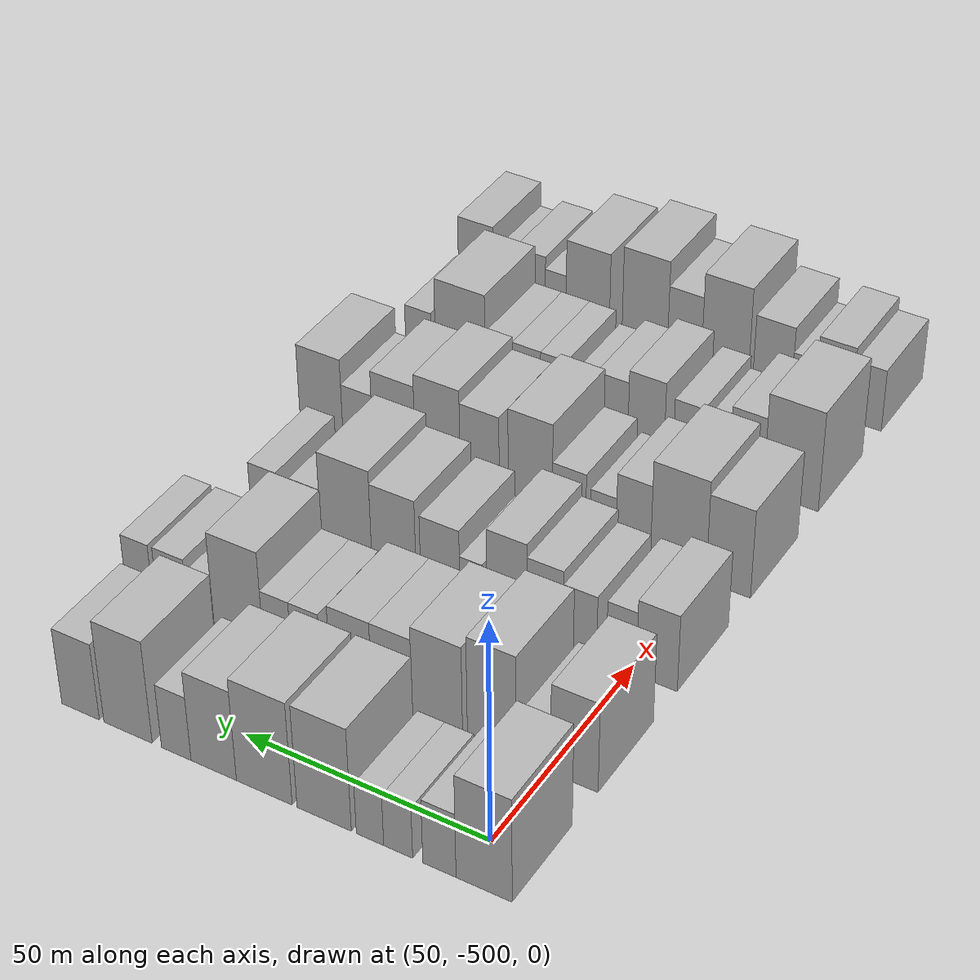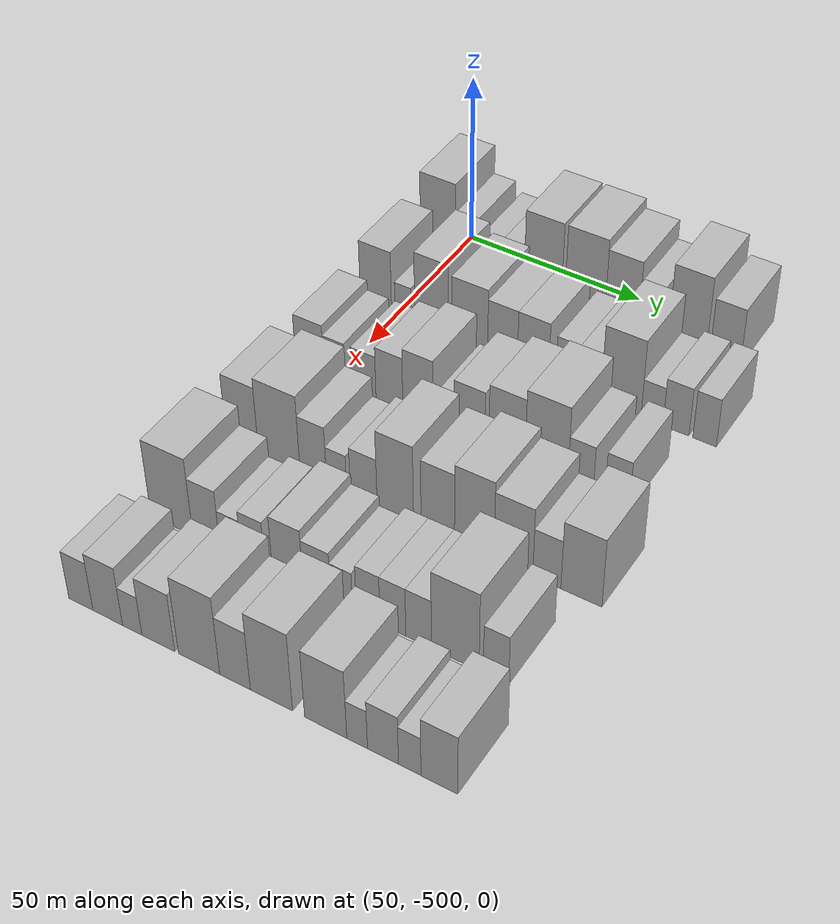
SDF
<sdf version="1.6">
 <world name="default">
  <model name="building_1">
   <static>1</static>
   <pose>50.0000 -504.5952 0 0.000000 0.000000 0.000000</pose>
   <link name="link">
    <pose>0 0 12.00 0 0 0</pose>
    <collision name="collision"><geometry><box><size>20.0000 10.8095 24.0000</size></box></geometry></collision>
    <visual name="visual">
     <cast_shadows>0</cast_shadows>
     <geometry><box><size>20.0000 10.8095 24.0000</size></box></geometry>
     <material>
      <script>
       <uri>model://HANNAS_wall/materials/scripts</uri>
       <uri>model://HANNAS_wall/materials/textures</uri>
       <name>vrc/HANNAS_wall</name>
      </script>
     </material>
    </visual>
   </link>
  </model>
  <model name="building_2">
   <static>1</static>
   <pose>50.0000 -495.9413 0 0.000000 0.000000 0.000000</pose>
   <link name="link">
    <pose>0 0 7.50 0 0 0</pose>
    <collision name="collision"><geometry><box><size>20.0000 6.4983 15.0000</size></box></geometry></collision>
    <visual name="visual">
     <cast_shadows>0</cast_shadows>
     <geometry><box><size>20.0000 6.4983 15.0000</size></box></geometry>
     <material>
      <script>
       <uri>model://HANNAS_wall/materials/scripts</uri>
       <uri>model://HANNAS_wall/materials/textures</uri>
       <name>vrc/HANNAS_wall</name>
      </script>
     </material>
    </visual>
   </link>
  </model>
  <model name="building_3">
   <static>1</static>
   <pose>50.0000 -487.8191 0 0.000000 0.000000 0.000000</pose>
   <link name="link">
    <pose>0 0 6.00 0 0 0</pose>
    <collision name="collision"><geometry><box><size>20.0000 5.7462 12.0000</size></box></geometry></collision>
    <visual name="visual">
     <cast_shadows>0</cast_shadows>
     <geometry><box><size>20.0000 5.7462 12.0000</size></box></geometry>
     <material>
      <script>
       <uri>model://HANNAS_wall/materials/scripts</uri>
       <uri>model://HANNAS_wall/materials/textures</uri>
       <name>vrc/HANNAS_wall</name>
      </script>
     </material>
    </visual>
   </link>
  </model>
  <model name="building_4">
   <static>1</static>
   <pose>50.0000 -482.2013 0 0.000000 0.000000 0.000000</pose>
   <link name="link">
    <pose>0 0 6.00 0 0 0</pose>
    <collision name="collision"><geometry><box><size>20.0000 5.4893 12.0000</size></box></geometry></collision>
    <visual name="visual">
     <cast_shadows>0</cast_shadows>
     <geometry><box><size>20.0000 5.4893 12.0000</size></box></geometry>
     <material>
      <script>
       <uri>model://HANNAS_wall/materials/scripts</uri>
       <uri>model://HANNAS_wall/materials/textures</uri>
       <name>vrc/HANNAS_wall</name>
      </script>
     </material>
    </visual>
   </link>
  </model>
  <model name="building_5">
   <static>1</static>
   <pose>50.0000 -472.9392 0 0.000000 0.000000 0.000000</pose>
   <link name="link">
    <pose>0 0 12.00 0 0 0</pose>
    <collision name="collision"><geometry><box><size>20.0000 11.0349 24.0000</size></box></geometry></collision>
    <visual name="visual">
     <cast_shadows>0</cast_shadows>
     <geometry><box><size>20.0000 11.0349 24.0000</size></box></geometry>
     <material>
      <script>
       <uri>model://HANNAS_wall/materials/scripts</uri>
       <uri>model://HANNAS_wall/materials/textures</uri>
       <name>vrc/HANNAS_wall</name>
      </script>
     </material>
    </visual>
   </link>
  </model>
  <model name="building_6">
   <static>1</static>
   <pose>50.0000 -460.6347 0 0.000000 0.000000 0.000000</pose>
   <link name="link">
    <pose>0 0 12.00 0 0 0</pose>
    <collision name="collision"><geometry><box><size>20.0000 11.5740 24.0000</size></box></geometry></collision>
    <visual name="visual">
     <cast_shadows>0</cast_shadows>
     <geometry><box><size>20.0000 11.5740 24.0000</size></box></geometry>
     <material>
      <script>
       <uri>model://HANNAS_wall/materials/scripts</uri>
       <uri>model://HANNAS_wall/materials/textures</uri>
       <name>vrc/HANNAS_wall</name>
      </script>
     </material>
    </visual>
   </link>
  </model>
  <model name="building_7">
   <static>1</static>
   <pose>50.0000 -450.0539 0 0.000000 0.000000 0.000000</pose>
   <link name="link">
    <pose>0 0 10.50 0 0 0</pose>
    <collision name="collision"><geometry><box><size>20.0000 9.5876 21.0000</size></box></geometry></collision>
    <visual name="visual">
     <cast_shadows>0</cast_shadows>
     <geometry><box><size>20.0000 9.5876 21.0000</size></box></geometry>
     <material>
      <script>
       <uri>model://HANNAS_wall/materials/scripts</uri>
       <uri>model://HANNAS_wall/materials/textures</uri>
       <name>vrc/HANNAS_wall</name>
      </script>
     </material>
    </visual>
   </link>
  </model>
  <model name="building_8">
   <static>1</static>
   <pose>50.0000 -442.0998 0 0.000000 0.000000 0.000000</pose>
   <link name="link">
    <pose>0 0 7.50 0 0 0</pose>
    <collision name="collision"><geometry><box><size>20.0000 6.3206 15.0000</size></box></geometry></collision>
    <visual name="visual">
     <cast_shadows>0</cast_shadows>
     <geometry><box><size>20.0000 6.3206 15.0000</size></box></geometry>
     <material>
      <script>
       <uri>model://HANNAS_wall/materials/scripts</uri>
       <uri>model://HANNAS_wall/materials/textures</uri>
       <name>vrc/HANNAS_wall</name>
      </script>
     </material>
    </visual>
   </link>
  </model>
  <model name="building_9">
   <static>1</static>
   <pose>50.0000 -431.6777 0 0.000000 0.000000 0.000000</pose>
   <link name="link">
    <pose>0 0 12.00 0 0 0</pose>
    <collision name="collision"><geometry><box><size>20.0000 10.5235 24.0000</size></box></geometry></collision>
    <visual name="visual">
     <cast_shadows>0</cast_shadows>
     <geometry><box><size>20.0000 10.5235 24.0000</size></box></geometry>
     <material>
      <script>
       <uri>model://HANNAS_wall/materials/scripts</uri>
       <uri>model://HANNAS_wall/materials/textures</uri>
       <name>vrc/HANNAS_wall</name>
      </script>
     </material>
    </visual>
   </link>
  </model>
  <model name="building_10">
   <static>1</static>
   <pose>50.0000 -421.2742 0 0.000000 0.000000 0.000000</pose>
   <link name="link">
    <pose>0 0 9.00 0 0 0</pose>
    <collision name="collision"><geometry><box><size>20.0000 8.2835 18.0000</size></box></geometry></collision>
    <visual name="visual">
     <cast_shadows>0</cast_shadows>
     <geometry><box><size>20.0000 8.2835 18.0000</size></box></geometry>
     <material>
      <script>
       <uri>model://HANNAS_wall/materials/scripts</uri>
       <uri>model://HANNAS_wall/materials/textures</uri>
       <name>vrc/HANNAS_wall</name>
      </script>
     </material>
    </visual>
   </link>
  </model>
  <model name="building_111">
   <static>1</static>
   <pose>79.0000 -505.2929 0 0.000000 0.000000 0.000000</pose>
   <link name="link">
    <pose>0 0 10.50 0 0 0</pose>
    <collision name="collision"><geometry><box><size>20.0000 9.4142 21.0000</size></box></geometry></collision>
    <visual name="visual">
     <cast_shadows>0</cast_shadows>
     <geometry><box><size>20.0000 9.4142 21.0000</size></box></geometry>
     <material>
      <script>
       <uri>model://HANNAS_wall/materials/scripts</uri>
       <uri>model://HANNAS_wall/materials/textures</uri>
       <name>vrc/HANNAS_wall</name>
      </script>
     </material>
    </visual>
   </link>
  </model>
  <model name="building_112">
   <static>1</static>
   <pose>79.0000 -497.1277 0 0.000000 0.000000 0.000000</pose>
   <link name="link">
    <pose>0 0 6.00 0 0 0</pose>
    <collision name="collision"><geometry><box><size>20.0000 4.9163 12.0000</size></box></geometry></collision>
    <visual name="visual">
     <cast_shadows>0</cast_shadows>
     <geometry><box><size>20.0000 4.9163 12.0000</size></box></geometry>
     <material>
      <script>
       <uri>model://HANNAS_wall/materials/scripts</uri>
       <uri>model://HANNAS_wall/materials/textures</uri>
       <name>vrc/HANNAS_wall</name>
      </script>
     </material>
    </visual>
   </link>
  </model>
  <model name="building_113">
   <static>1</static>
   <pose>79.0000 -488.7344 0 0.000000 0.000000 0.000000</pose>
   <link name="link">
    <pose>0 0 12.00 0 0 0</pose>
    <collision name="collision"><geometry><box><size>20.0000 9.8702 24.0000</size></box></geometry></collision>
    <visual name="visual">
     <cast_shadows>0</cast_shadows>
     <geometry><box><size>20.0000 9.8702 24.0000</size></box></geometry>
     <material>
      <script>
       <uri>model://HANNAS_wall/materials/scripts</uri>
       <uri>model://HANNAS_wall/materials/textures</uri>
       <name>vrc/HANNAS_wall</name>
      </script>
     </material>
    </visual>
   </link>
  </model>
  <model name="building_114">
   <static>1</static>
   <pose>79.0000 -477.6058 0 0.000000 0.000000 0.000000</pose>
   <link name="link">
    <pose>0 0 10.50 0 0 0</pose>
    <collision name="collision"><geometry><box><size>20.0000 10.3870 21.0000</size></box></geometry></collision>
    <visual name="visual">
     <cast_shadows>0</cast_shadows>
     <geometry><box><size>20.0000 10.3870 21.0000</size></box></geometry>
     <material>
      <script>
       <uri>model://HANNAS_wall/materials/scripts</uri>
       <uri>model://HANNAS_wall/materials/textures</uri>
       <name>vrc/HANNAS_wall</name>
      </script>
     </material>
    </visual>
   </link>
  </model>
  <model name="building_115">
   <static>1</static>
   <pose>79.0000 -468.1755 0 0.000000 0.000000 0.000000</pose>
   <link name="link">
    <pose>0 0 9.00 0 0 0</pose>
    <collision name="collision"><geometry><box><size>20.0000 8.4735 18.0000</size></box></geometry></collision>
    <visual name="visual">
     <cast_shadows>0</cast_shadows>
     <geometry><box><size>20.0000 8.4735 18.0000</size></box></geometry>
     <material>
      <script>
       <uri>model://HANNAS_wall/materials/scripts</uri>
       <uri>model://HANNAS_wall/materials/textures</uri>
       <name>vrc/HANNAS_wall</name>
      </script>
     </material>
    </visual>
   </link>
  </model>
  <model name="building_116">
   <static>1</static>
   <pose>79.0000 -459.5219 0 0.000000 0.000000 0.000000</pose>
   <link name="link">
    <pose>0 0 9.00 0 0 0</pose>
    <collision name="collision"><geometry><box><size>20.0000 8.8338 18.0000</size></box></geometry></collision>
    <visual name="visual">
     <cast_shadows>0</cast_shadows>
     <geometry><box><size>20.0000 8.8338 18.0000</size></box></geometry>
     <material>
      <script>
       <uri>model://HANNAS_wall/materials/scripts</uri>
       <uri>model://HANNAS_wall/materials/textures</uri>
       <name>vrc/HANNAS_wall</name>
      </script>
     </material>
    </visual>
   </link>
  </model>
  <model name="building_117">
   <static>1</static>
   <pose>79.0000 -449.9387 0 0.000000 0.000000 0.000000</pose>
   <link name="link">
    <pose>0 0 7.50 0 0 0</pose>
    <collision name="collision"><geometry><box><size>20.0000 6.3326 15.0000</size></box></geometry></collision>
    <visual name="visual">
     <cast_shadows>0</cast_shadows>
     <geometry><box><size>20.0000 6.3326 15.0000</size></box></geometry>
     <material>
      <script>
       <uri>model://HANNAS_wall/materials/scripts</uri>
       <uri>model://HANNAS_wall/materials/textures</uri>
       <name>vrc/HANNAS_wall</name>
      </script>
     </material>
    </visual>
   </link>
  </model>
  <model name="building_118">
   <static>1</static>
   <pose>79.0000 -443.7135 0 0.000000 0.000000 0.000000</pose>
   <link name="link">
    <pose>0 0 7.50 0 0 0</pose>
    <collision name="collision"><geometry><box><size>20.0000 6.1177 15.0000</size></box></geometry></collision>
    <visual name="visual">
     <cast_shadows>0</cast_shadows>
     <geometry><box><size>20.0000 6.1177 15.0000</size></box></geometry>
     <material>
      <script>
       <uri>model://HANNAS_wall/materials/scripts</uri>
       <uri>model://HANNAS_wall/materials/textures</uri>
       <name>vrc/HANNAS_wall</name>
      </script>
     </material>
    </visual>
   </link>
  </model>
  <model name="building_119">
   <static>1</static>
   <pose>79.0000 -435.2059 0 0.000000 0.000000 0.000000</pose>
   <link name="link">
    <pose>0 0 12.00 0 0 0</pose>
    <collision name="collision"><geometry><box><size>20.0000 10.8974 24.0000</size></box></geometry></collision>
    <visual name="visual">
     <cast_shadows>0</cast_shadows>
     <geometry><box><size>20.0000 10.8974 24.0000</size></box></geometry>
     <material>
      <script>
       <uri>model://HANNAS_wall/materials/scripts</uri>
       <uri>model://HANNAS_wall/materials/textures</uri>
       <name>vrc/HANNAS_wall</name>
      </script>
     </material>
    </visual>
   </link>
  </model>
  <model name="building_120">
   <static>1</static>
   <pose>79.0000 -426.8237 0 0.000000 0.000000 0.000000</pose>
   <link name="link">
    <pose>0 0 6.00 0 0 0</pose>
    <collision name="collision"><geometry><box><size>20.0000 5.8671 12.0000</size></box></geometry></collision>
    <visual name="visual">
     <cast_shadows>0</cast_shadows>
     <geometry><box><size>20.0000 5.8671 12.0000</size></box></geometry>
     <material>
      <script>
       <uri>model://HANNAS_wall/materials/scripts</uri>
       <uri>model://HANNAS_wall/materials/textures</uri>
       <name>vrc/HANNAS_wall</name>
      </script>
     </material>
    </visual>
   </link>
  </model>
  <model name="building_121">
   <static>1</static>
   <pose>79.0000 -420.4498 0 0.000000 0.000000 0.000000</pose>
   <link name="link">
    <pose>0 0 7.50 0 0 0</pose>
    <collision name="collision"><geometry><box><size>20.0000 6.8807 15.0000</size></box></geometry></collision>
    <visual name="visual">
     <cast_shadows>0</cast_shadows>
     <geometry><box><size>20.0000 6.8807 15.0000</size></box></geometry>
     <material>
      <script>
       <uri>model://HANNAS_wall/materials/scripts</uri>
       <uri>model://HANNAS_wall/materials/textures</uri>
       <name>vrc/HANNAS_wall</name>
      </script>
     </material>
    </visual>
   </link>
  </model>
  <model name="building_122">
   <static>1</static>
   <pose>79.0000 -412.9315 0 0.000000 0.000000 0.000000</pose>
   <link name="link">
    <pose>0 0 7.50 0 0 0</pose>
    <collision name="collision"><geometry><box><size>20.0000 6.1558 15.0000</size></box></geometry></collision>
    <visual name="visual">
     <cast_shadows>0</cast_shadows>
     <geometry><box><size>20.0000 6.1558 15.0000</size></box></geometry>
     <material>
      <script>
       <uri>model://HANNAS_wall/materials/scripts</uri>
       <uri>model://HANNAS_wall/materials/textures</uri>
       <name>vrc/HANNAS_wall</name>
      </script>
     </material>
    </visual>
   </link>
  </model>
  <model name="building_220">
   <static>1</static>
   <pose>108.0000 -505.8195 0 0.000000 0.000000 0.000000</pose>
   <link name="link">
    <pose>0 0 9.00 0 0 0</pose>
    <collision name="collision"><geometry><box><size>20.0000 8.3610 18.0000</size></box></geometry></collision>
    <visual name="visual">
     <cast_shadows>0</cast_shadows>
     <geometry><box><size>20.0000 8.3610 18.0000</size></box></geometry>
     <material>
      <script>
       <uri>model://HANNAS_wall/materials/scripts</uri>
       <uri>model://HANNAS_wall/materials/textures</uri>
       <name>vrc/HANNAS_wall</name>
      </script>
     </material>
    </visual>
   </link>
  </model>
  <model name="building_221">
   <static>1</static>
   <pose>108.0000 -498.5720 0 0.000000 0.000000 0.000000</pose>
   <link name="link">
    <pose>0 0 7.50 0 0 0</pose>
    <collision name="collision"><geometry><box><size>20.0000 6.1340 15.0000</size></box></geometry></collision>
    <visual name="visual">
     <cast_shadows>0</cast_shadows>
     <geometry><box><size>20.0000 6.1340 15.0000</size></box></geometry>
     <material>
      <script>
       <uri>model://HANNAS_wall/materials/scripts</uri>
       <uri>model://HANNAS_wall/materials/textures</uri>
       <name>vrc/HANNAS_wall</name>
      </script>
     </material>
    </visual>
   </link>
  </model>
  <model name="building_222">
   <static>1</static>
   <pose>108.0000 -490.0322 0 0.000000 0.000000 0.000000</pose>
   <link name="link">
    <pose>0 0 7.50 0 0 0</pose>
    <collision name="collision"><geometry><box><size>20.0000 6.9456 15.0000</size></box></geometry></collision>
    <visual name="visual">
     <cast_shadows>0</cast_shadows>
     <geometry><box><size>20.0000 6.9456 15.0000</size></box></geometry>
     <material>
      <script>
       <uri>model://HANNAS_wall/materials/scripts</uri>
       <uri>model://HANNAS_wall/materials/textures</uri>
       <name>vrc/HANNAS_wall</name>
      </script>
     </material>
    </visual>
   </link>
  </model>
  <model name="building_223">
   <static>1</static>
   <pose>108.0000 -482.7384 0 0.000000 0.000000 0.000000</pose>
   <link name="link">
    <pose>0 0 9.00 0 0 0</pose>
    <collision name="collision"><geometry><box><size>20.0000 7.6420 18.0000</size></box></geometry></collision>
    <visual name="visual">
     <cast_shadows>0</cast_shadows>
     <geometry><box><size>20.0000 7.6420 18.0000</size></box></geometry>
     <material>
      <script>
       <uri>model://HANNAS_wall/materials/scripts</uri>
       <uri>model://HANNAS_wall/materials/textures</uri>
       <name>vrc/HANNAS_wall</name>
      </script>
     </material>
    </visual>
   </link>
  </model>
  <model name="building_224">
   <static>1</static>
   <pose>108.0000 -474.6764 0 0.000000 0.000000 0.000000</pose>
   <link name="link">
    <pose>0 0 10.50 0 0 0</pose>
    <collision name="collision"><geometry><box><size>20.0000 8.4821 21.0000</size></box></geometry></collision>
    <visual name="visual">
     <cast_shadows>0</cast_shadows>
     <geometry><box><size>20.0000 8.4821 21.0000</size></box></geometry>
     <material>
      <script>
       <uri>model://HANNAS_wall/materials/scripts</uri>
       <uri>model://HANNAS_wall/materials/textures</uri>
       <name>vrc/HANNAS_wall</name>
      </script>
     </material>
    </visual>
   </link>
  </model>
  <model name="building_225">
   <static>1</static>
   <pose>108.0000 -467.0159 0 0.000000 0.000000 0.000000</pose>
   <link name="link">
    <pose>0 0 6.00 0 0 0</pose>
    <collision name="collision"><geometry><box><size>20.0000 4.8388 12.0000</size></box></geometry></collision>
    <visual name="visual">
     <cast_shadows>0</cast_shadows>
     <geometry><box><size>20.0000 4.8388 12.0000</size></box></geometry>
     <material>
      <script>
       <uri>model://HANNAS_wall/materials/scripts</uri>
       <uri>model://HANNAS_wall/materials/textures</uri>
       <name>vrc/HANNAS_wall</name>
      </script>
     </material>
    </visual>
   </link>
  </model>
  <model name="building_226">
   <static>1</static>
   <pose>108.0000 -460.3482 0 0.000000 0.000000 0.000000</pose>
   <link name="link">
    <pose>0 0 9.00 0 0 0</pose>
    <collision name="collision"><geometry><box><size>20.0000 8.4967 18.0000</size></box></geometry></collision>
    <visual name="visual">
     <cast_shadows>0</cast_shadows>
     <geometry><box><size>20.0000 8.4967 18.0000</size></box></geometry>
     <material>
      <script>
       <uri>model://HANNAS_wall/materials/scripts</uri>
       <uri>model://HANNAS_wall/materials/textures</uri>
       <name>vrc/HANNAS_wall</name>
      </script>
     </material>
    </visual>
   </link>
  </model>
  <model name="building_227">
   <static>1</static>
   <pose>108.0000 -450.2007 0 0.000000 0.000000 0.000000</pose>
   <link name="link">
    <pose>0 0 10.50 0 0 0</pose>
    <collision name="collision"><geometry><box><size>20.0000 9.7982 21.0000</size></box></geometry></collision>
    <visual name="visual">
     <cast_shadows>0</cast_shadows>
     <geometry><box><size>20.0000 9.7982 21.0000</size></box></geometry>
     <material>
      <script>
       <uri>model://HANNAS_wall/materials/scripts</uri>
       <uri>model://HANNAS_wall/materials/textures</uri>
       <name>vrc/HANNAS_wall</name>
      </script>
     </material>
    </visual>
   </link>
  </model>
  <model name="building_228">
   <static>1</static>
   <pose>108.0000 -439.6297 0 0.000000 0.000000 0.000000</pose>
   <link name="link">
    <pose>0 0 12.00 0 0 0</pose>
    <collision name="collision"><geometry><box><size>20.0000 11.3439 24.0000</size></box></geometry></collision>
    <visual name="visual">
     <cast_shadows>0</cast_shadows>
     <geometry><box><size>20.0000 11.3439 24.0000</size></box></geometry>
     <material>
      <script>
       <uri>model://HANNAS_wall/materials/scripts</uri>
       <uri>model://HANNAS_wall/materials/textures</uri>
       <name>vrc/HANNAS_wall</name>
      </script>
     </material>
    </visual>
   </link>
  </model>
  <model name="building_229">
   <static>1</static>
   <pose>108.0000 -430.6265 0 0.000000 0.000000 0.000000</pose>
   <link name="link">
    <pose>0 0 7.50 0 0 0</pose>
    <collision name="collision"><geometry><box><size>20.0000 6.6625 15.0000</size></box></geometry></collision>
    <visual name="visual">
     <cast_shadows>0</cast_shadows>
     <geometry><box><size>20.0000 6.6625 15.0000</size></box></geometry>
     <material>
      <script>
       <uri>model://HANNAS_wall/materials/scripts</uri>
       <uri>model://HANNAS_wall/materials/textures</uri>
       <name>vrc/HANNAS_wall</name>
      </script>
     </material>
    </visual>
   </link>
  </model>
  <model name="building_230">
   <static>1</static>
   <pose>108.0000 -421.1246 0 0.000000 0.000000 0.000000</pose>
   <link name="link">
    <pose>0 0 7.50 0 0 0</pose>
    <collision name="collision"><geometry><box><size>20.0000 6.3412 15.0000</size></box></geometry></collision>
    <visual name="visual">
     <cast_shadows>0</cast_shadows>
     <geometry><box><size>20.0000 6.3412 15.0000</size></box></geometry>
     <material>
      <script>
       <uri>model://HANNAS_wall/materials/scripts</uri>
       <uri>model://HANNAS_wall/materials/textures</uri>
       <name>vrc/HANNAS_wall</name>
      </script>
     </material>
    </visual>
   </link>
  </model>
  <model name="building_329">
   <static>1</static>
   <pose>137.0000 -505.3490 0 0.000000 0.000000 0.000000</pose>
   <link name="link">
    <pose>0 0 10.50 0 0 0</pose>
    <collision name="collision"><geometry><box><size>20.0000 9.3020 21.0000</size></box></geometry></collision>
    <visual name="visual">
     <cast_shadows>0</cast_shadows>
     <geometry><box><size>20.0000 9.3020 21.0000</size></box></geometry>
     <material>
      <script>
       <uri>model://HANNAS_wall/materials/scripts</uri>
       <uri>model://HANNAS_wall/materials/textures</uri>
       <name>vrc/HANNAS_wall</name>
      </script>
     </material>
    </visual>
   </link>
  </model>
  <model name="building_330">
   <static>1</static>
   <pose>137.0000 -494.7951 0 0.000000 0.000000 0.000000</pose>
   <link name="link">
    <pose>0 0 12.00 0 0 0</pose>
    <collision name="collision"><geometry><box><size>20.0000 11.8059 24.0000</size></box></geometry></collision>
    <visual name="visual">
     <cast_shadows>0</cast_shadows>
     <geometry><box><size>20.0000 11.8059 24.0000</size></box></geometry>
     <material>
      <script>
       <uri>model://HANNAS_wall/materials/scripts</uri>
       <uri>model://HANNAS_wall/materials/textures</uri>
       <name>vrc/HANNAS_wall</name>
      </script>
     </material>
    </visual>
   </link>
  </model>
  <model name="building_331">
   <static>1</static>
   <pose>137.0000 -485.1716 0 0.000000 0.000000 0.000000</pose>
   <link name="link">
    <pose>0 0 9.00 0 0 0</pose>
    <collision name="collision"><geometry><box><size>20.0000 7.4411 18.0000</size></box></geometry></collision>
    <visual name="visual">
     <cast_shadows>0</cast_shadows>
     <geometry><box><size>20.0000 7.4411 18.0000</size></box></geometry>
     <material>
      <script>
       <uri>model://HANNAS_wall/materials/scripts</uri>
       <uri>model://HANNAS_wall/materials/textures</uri>
       <name>vrc/HANNAS_wall</name>
      </script>
     </material>
    </visual>
   </link>
  </model>
  <model name="building_332">
   <static>1</static>
   <pose>137.0000 -478.6652 0 0.000000 0.000000 0.000000</pose>
   <link name="link">
    <pose>0 0 6.00 0 0 0</pose>
    <collision name="collision"><geometry><box><size>20.0000 5.5718 12.0000</size></box></geometry></collision>
    <visual name="visual">
     <cast_shadows>0</cast_shadows>
     <geometry><box><size>20.0000 5.5718 12.0000</size></box></geometry>
     <material>
      <script>
       <uri>model://HANNAS_wall/materials/scripts</uri>
       <uri>model://HANNAS_wall/materials/textures</uri>
       <name>vrc/HANNAS_wall</name>
      </script>
     </material>
    </visual>
   </link>
  </model>
  <model name="building_333">
   <static>1</static>
   <pose>137.0000 -471.2236 0 0.000000 0.000000 0.000000</pose>
   <link name="link">
    <pose>0 0 7.50 0 0 0</pose>
    <collision name="collision"><geometry><box><size>20.0000 7.3114 15.0000</size></box></geometry></collision>
    <visual name="visual">
     <cast_shadows>0</cast_shadows>
     <geometry><box><size>20.0000 7.3114 15.0000</size></box></geometry>
     <material>
      <script>
       <uri>model://HANNAS_wall/materials/scripts</uri>
       <uri>model://HANNAS_wall/materials/textures</uri>
       <name>vrc/HANNAS_wall</name>
      </script>
     </material>
    </visual>
   </link>
  </model>
  <model name="building_334">
   <static>1</static>
   <pose>137.0000 -462.6782 0 0.000000 0.000000 0.000000</pose>
   <link name="link">
    <pose>0 0 12.00 0 0 0</pose>
    <collision name="collision"><geometry><box><size>20.0000 9.7794 24.0000</size></box></geometry></collision>
    <visual name="visual">
     <cast_shadows>0</cast_shadows>
     <geometry><box><size>20.0000 9.7794 24.0000</size></box></geometry>
     <material>
      <script>
       <uri>model://HANNAS_wall/materials/scripts</uri>
       <uri>model://HANNAS_wall/materials/textures</uri>
       <name>vrc/HANNAS_wall</name>
      </script>
     </material>
    </visual>
   </link>
  </model>
  <model name="building_335">
   <static>1</static>
   <pose>137.0000 -451.3932 0 0.000000 0.000000 0.000000</pose>
   <link name="link">
    <pose>0 0 10.50 0 0 0</pose>
    <collision name="collision"><geometry><box><size>20.0000 8.7908 21.0000</size></box></geometry></collision>
    <visual name="visual">
     <cast_shadows>0</cast_shadows>
     <geometry><box><size>20.0000 8.7908 21.0000</size></box></geometry>
     <material>
      <script>
       <uri>model://HANNAS_wall/materials/scripts</uri>
       <uri>model://HANNAS_wall/materials/textures</uri>
       <name>vrc/HANNAS_wall</name>
      </script>
     </material>
    </visual>
   </link>
  </model>
  <model name="building_336">
   <static>1</static>
   <pose>137.0000 -441.8623 0 0.000000 0.000000 0.000000</pose>
   <link name="link">
    <pose>0 0 12.00 0 0 0</pose>
    <collision name="collision"><geometry><box><size>20.0000 10.2709 24.0000</size></box></geometry></collision>
    <visual name="visual">
     <cast_shadows>0</cast_shadows>
     <geometry><box><size>20.0000 10.2709 24.0000</size></box></geometry>
     <material>
      <script>
       <uri>model://HANNAS_wall/materials/scripts</uri>
       <uri>model://HANNAS_wall/materials/textures</uri>
       <name>vrc/HANNAS_wall</name>
      </script>
     </material>
    </visual>
   </link>
  </model>
  <model name="building_337">
   <static>1</static>
   <pose>137.0000 -431.7938 0 0.000000 0.000000 0.000000</pose>
   <link name="link">
    <pose>0 0 10.50 0 0 0</pose>
    <collision name="collision"><geometry><box><size>20.0000 9.8662 21.0000</size></box></geometry></collision>
    <visual name="visual">
     <cast_shadows>0</cast_shadows>
     <geometry><box><size>20.0000 9.8662 21.0000</size></box></geometry>
     <material>
      <script>
       <uri>model://HANNAS_wall/materials/scripts</uri>
       <uri>model://HANNAS_wall/materials/textures</uri>
       <name>vrc/HANNAS_wall</name>
      </script>
     </material>
    </visual>
   </link>
  </model>
  <model name="building_338">
   <static>1</static>
   <pose>137.0000 -423.3408 0 0.000000 0.000000 0.000000</pose>
   <link name="link">
    <pose>0 0 7.50 0 0 0</pose>
    <collision name="collision"><geometry><box><size>20.0000 7.0400 15.0000</size></box></geometry></collision>
    <visual name="visual">
     <cast_shadows>0</cast_shadows>
     <geometry><box><size>20.0000 7.0400 15.0000</size></box></geometry>
     <material>
      <script>
       <uri>model://HANNAS_wall/materials/scripts</uri>
       <uri>model://HANNAS_wall/materials/textures</uri>
       <name>vrc/HANNAS_wall</name>
      </script>
     </material>
    </visual>
   </link>
  </model>
  <model name="building_339">
   <static>1</static>
   <pose>137.0000 -414.7332 0 0.000000 0.000000 0.000000</pose>
   <link name="link">
    <pose>0 0 10.50 0 0 0</pose>
    <collision name="collision"><geometry><box><size>20.0000 10.1752 21.0000</size></box></geometry></collision>
    <visual name="visual">
     <cast_shadows>0</cast_shadows>
     <geometry><box><size>20.0000 10.1752 21.0000</size></box></geometry>
     <material>
      <script>
       <uri>model://HANNAS_wall/materials/scripts</uri>
       <uri>model://HANNAS_wall/materials/textures</uri>
       <name>vrc/HANNAS_wall</name>
      </script>
     </material>
    </visual>
   </link>
  </model>
  <model name="building_444">
   <static>1</static>
   <pose>166.0000 -504.0798 0 0.000000 0.000000 0.000000</pose>
   <link name="link">
    <pose>0 0 12.00 0 0 0</pose>
    <collision name="collision"><geometry><box><size>20.0000 11.8403 24.0000</size></box></geometry></collision>
    <visual name="visual">
     <cast_shadows>0</cast_shadows>
     <geometry><box><size>20.0000 11.8403 24.0000</size></box></geometry>
     <material>
      <script>
       <uri>model://HANNAS_wall/materials/scripts</uri>
       <uri>model://HANNAS_wall/materials/textures</uri>
       <name>vrc/HANNAS_wall</name>
      </script>
     </material>
    </visual>
   </link>
  </model>
  <model name="building_445">
   <static>1</static>
   <pose>166.0000 -494.3886 0 0.000000 0.000000 0.000000</pose>
   <link name="link">
    <pose>0 0 9.00 0 0 0</pose>
    <collision name="collision"><geometry><box><size>20.0000 7.5422 18.0000</size></box></geometry></collision>
    <visual name="visual">
     <cast_shadows>0</cast_shadows>
     <geometry><box><size>20.0000 7.5422 18.0000</size></box></geometry>
     <material>
      <script>
       <uri>model://HANNAS_wall/materials/scripts</uri>
       <uri>model://HANNAS_wall/materials/textures</uri>
       <name>vrc/HANNAS_wall</name>
      </script>
     </material>
    </visual>
   </link>
  </model>
  <model name="building_446">
   <static>1</static>
   <pose>166.0000 -487.6663 0 0.000000 0.000000 0.000000</pose>
   <link name="link">
    <pose>0 0 6.00 0 0 0</pose>
    <collision name="collision"><geometry><box><size>20.0000 5.9022 12.0000</size></box></geometry></collision>
    <visual name="visual">
     <cast_shadows>0</cast_shadows>
     <geometry><box><size>20.0000 5.9022 12.0000</size></box></geometry>
     <material>
      <script>
       <uri>model://HANNAS_wall/materials/scripts</uri>
       <uri>model://HANNAS_wall/materials/textures</uri>
       <name>vrc/HANNAS_wall</name>
      </script>
     </material>
    </visual>
   </link>
  </model>
  <model name="building_447">
   <static>1</static>
   <pose>166.0000 -481.5098 0 0.000000 0.000000 0.000000</pose>
   <link name="link">
    <pose>0 0 7.50 0 0 0</pose>
    <collision name="collision"><geometry><box><size>20.0000 6.4110 15.0000</size></box></geometry></collision>
    <visual name="visual">
     <cast_shadows>0</cast_shadows>
     <geometry><box><size>20.0000 6.4110 15.0000</size></box></geometry>
     <material>
      <script>
       <uri>model://HANNAS_wall/materials/scripts</uri>
       <uri>model://HANNAS_wall/materials/textures</uri>
       <name>vrc/HANNAS_wall</name>
      </script>
     </material>
    </visual>
   </link>
  </model>
  <model name="building_448">
   <static>1</static>
   <pose>166.0000 -472.2298 0 0.000000 0.000000 0.000000</pose>
   <link name="link">
    <pose>0 0 9.00 0 0 0</pose>
    <collision name="collision"><geometry><box><size>20.0000 8.1490 18.0000</size></box></geometry></collision>
    <visual name="visual">
     <cast_shadows>0</cast_shadows>
     <geometry><box><size>20.0000 8.1490 18.0000</size></box></geometry>
     <material>
      <script>
       <uri>model://HANNAS_wall/materials/scripts</uri>
       <uri>model://HANNAS_wall/materials/textures</uri>
       <name>vrc/HANNAS_wall</name>
      </script>
     </material>
    </visual>
   </link>
  </model>
  <model name="building_449">
   <static>1</static>
   <pose>166.0000 -464.5146 0 0.000000 0.000000 0.000000</pose>
   <link name="link">
    <pose>0 0 7.50 0 0 0</pose>
    <collision name="collision"><geometry><box><size>20.0000 7.2815 15.0000</size></box></geometry></collision>
    <visual name="visual">
     <cast_shadows>0</cast_shadows>
     <geometry><box><size>20.0000 7.2815 15.0000</size></box></geometry>
     <material>
      <script>
       <uri>model://HANNAS_wall/materials/scripts</uri>
       <uri>model://HANNAS_wall/materials/textures</uri>
       <name>vrc/HANNAS_wall</name>
      </script>
     </material>
    </visual>
   </link>
  </model>
  <model name="building_450">
   <static>1</static>
   <pose>166.0000 -458.0248 0 0.000000 0.000000 0.000000</pose>
   <link name="link">
    <pose>0 0 6.00 0 0 0</pose>
    <collision name="collision"><geometry><box><size>20.0000 5.6981 12.0000</size></box></geometry></collision>
    <visual name="visual">
     <cast_shadows>0</cast_shadows>
     <geometry><box><size>20.0000 5.6981 12.0000</size></box></geometry>
     <material>
      <script>
       <uri>model://HANNAS_wall/materials/scripts</uri>
       <uri>model://HANNAS_wall/materials/textures</uri>
       <name>vrc/HANNAS_wall</name>
      </script>
     </material>
    </visual>
   </link>
  </model>
  <model name="building_451">
   <static>1</static>
   <pose>166.0000 -451.1561 0 0.000000 0.000000 0.000000</pose>
   <link name="link">
    <pose>0 0 7.50 0 0 0</pose>
    <collision name="collision"><geometry><box><size>20.0000 6.0392 15.0000</size></box></geometry></collision>
    <visual name="visual">
     <cast_shadows>0</cast_shadows>
     <geometry><box><size>20.0000 6.0392 15.0000</size></box></geometry>
     <material>
      <script>
       <uri>model://HANNAS_wall/materials/scripts</uri>
       <uri>model://HANNAS_wall/materials/textures</uri>
       <name>vrc/HANNAS_wall</name>
      </script>
     </material>
    </visual>
   </link>
  </model>
  <model name="building_452">
   <static>1</static>
   <pose>166.0000 -444.8753 0 0.000000 0.000000 0.000000</pose>
   <link name="link">
    <pose>0 0 7.50 0 0 0</pose>
    <collision name="collision"><geometry><box><size>20.0000 6.5224 15.0000</size></box></geometry></collision>
    <visual name="visual">
     <cast_shadows>0</cast_shadows>
     <geometry><box><size>20.0000 6.5224 15.0000</size></box></geometry>
     <material>
      <script>
       <uri>model://HANNAS_wall/materials/scripts</uri>
       <uri>model://HANNAS_wall/materials/textures</uri>
       <name>vrc/HANNAS_wall</name>
      </script>
     </material>
    </visual>
   </link>
  </model>
  <model name="building_453">
   <static>1</static>
   <pose>166.0000 -438.4103 0 0.000000 0.000000 0.000000</pose>
   <link name="link">
    <pose>0 0 7.50 0 0 0</pose>
    <collision name="collision"><geometry><box><size>20.0000 6.4076 15.0000</size></box></geometry></collision>
    <visual name="visual">
     <cast_shadows>0</cast_shadows>
     <geometry><box><size>20.0000 6.4076 15.0000</size></box></geometry>
     <material>
      <script>
       <uri>model://HANNAS_wall/materials/scripts</uri>
       <uri>model://HANNAS_wall/materials/textures</uri>
       <name>vrc/HANNAS_wall</name>
      </script>
     </material>
    </visual>
   </link>
  </model>
  <model name="building_454">
   <static>1</static>
   <pose>166.0000 -429.3245 0 0.000000 0.000000 0.000000</pose>
   <link name="link">
    <pose>0 0 12.00 0 0 0</pose>
    <collision name="collision"><geometry><box><size>20.0000 11.7639 24.0000</size></box></geometry></collision>
    <visual name="visual">
     <cast_shadows>0</cast_shadows>
     <geometry><box><size>20.0000 11.7639 24.0000</size></box></geometry>
     <material>
      <script>
       <uri>model://HANNAS_wall/materials/scripts</uri>
       <uri>model://HANNAS_wall/materials/textures</uri>
       <name>vrc/HANNAS_wall</name>
      </script>
     </material>
    </visual>
   </link>
  </model>
  <model name="building_455">
   <static>1</static>
   <pose>166.0000 -419.3560 0 0.000000 0.000000 0.000000</pose>
   <link name="link">
    <pose>0 0 7.50 0 0 0</pose>
    <collision name="collision"><geometry><box><size>20.0000 6.1731 15.0000</size></box></geometry></collision>
    <visual name="visual">
     <cast_shadows>0</cast_shadows>
     <geometry><box><size>20.0000 6.1731 15.0000</size></box></geometry>
     <material>
      <script>
       <uri>model://HANNAS_wall/materials/scripts</uri>
       <uri>model://HANNAS_wall/materials/textures</uri>
       <name>vrc/HANNAS_wall</name>
      </script>
     </material>
    </visual>
   </link>
  </model>
  <model name="building_564">
   <static>1</static>
   <pose>195.0000 -506.6585 0 0.000000 0.000000 0.000000</pose>
   <link name="link">
    <pose>0 0 7.50 0 0 0</pose>
    <collision name="collision"><geometry><box><size>20.0000 6.6830 15.0000</size></box></geometry></collision>
    <visual name="visual">
     <cast_shadows>0</cast_shadows>
     <geometry><box><size>20.0000 6.6830 15.0000</size></box></geometry>
     <material>
      <script>
       <uri>model://HANNAS_wall/materials/scripts</uri>
       <uri>model://HANNAS_wall/materials/textures</uri>
       <name>vrc/HANNAS_wall</name>
      </script>
     </material>
    </visual>
   </link>
  </model>
  <model name="building_565">
   <static>1</static>
   <pose>195.0000 -499.2752 0 0.000000 0.000000 0.000000</pose>
   <link name="link">
    <pose>0 0 9.00 0 0 0</pose>
    <collision name="collision"><geometry><box><size>20.0000 8.0837 18.0000</size></box></geometry></collision>
    <visual name="visual">
     <cast_shadows>0</cast_shadows>
     <geometry><box><size>20.0000 8.0837 18.0000</size></box></geometry>
     <material>
      <script>
       <uri>model://HANNAS_wall/materials/scripts</uri>
       <uri>model://HANNAS_wall/materials/textures</uri>
       <name>vrc/HANNAS_wall</name>
      </script>
     </material>
    </visual>
   </link>
  </model>
  <model name="building_566">
   <static>1</static>
   <pose>195.0000 -492.6064 0 0.000000 0.000000 0.000000</pose>
   <link name="link">
    <pose>0 0 6.00 0 0 0</pose>
    <collision name="collision"><geometry><box><size>20.0000 5.2539 12.0000</size></box></geometry></collision>
    <visual name="visual">
     <cast_shadows>0</cast_shadows>
     <geometry><box><size>20.0000 5.2539 12.0000</size></box></geometry>
     <material>
      <script>
       <uri>model://HANNAS_wall/materials/scripts</uri>
       <uri>model://HANNAS_wall/materials/textures</uri>
       <name>vrc/HANNAS_wall</name>
      </script>
     </material>
    </visual>
   </link>
  </model>
  <model name="building_567">
   <static>1</static>
   <pose>195.0000 -485.6063 0 0.000000 0.000000 0.000000</pose>
   <link name="link">
    <pose>0 0 9.00 0 0 0</pose>
    <collision name="collision"><geometry><box><size>20.0000 8.7463 18.0000</size></box></geometry></collision>
    <visual name="visual">
     <cast_shadows>0</cast_shadows>
     <geometry><box><size>20.0000 8.7463 18.0000</size></box></geometry>
     <material>
      <script>
       <uri>model://HANNAS_wall/materials/scripts</uri>
       <uri>model://HANNAS_wall/materials/textures</uri>
       <name>vrc/HANNAS_wall</name>
      </script>
     </material>
    </visual>
   </link>
  </model>
  <model name="building_568">
   <static>1</static>
   <pose>195.0000 -474.8374 0 0.000000 0.000000 0.000000</pose>
   <link name="link">
    <pose>0 0 12.00 0 0 0</pose>
    <collision name="collision"><geometry><box><size>20.0000 10.7915 24.0000</size></box></geometry></collision>
    <visual name="visual">
     <cast_shadows>0</cast_shadows>
     <geometry><box><size>20.0000 10.7915 24.0000</size></box></geometry>
     <material>
      <script>
       <uri>model://HANNAS_wall/materials/scripts</uri>
       <uri>model://HANNAS_wall/materials/textures</uri>
       <name>vrc/HANNAS_wall</name>
      </script>
     </material>
    </visual>
   </link>
  </model>
  <model name="building_569">
   <static>1</static>
   <pose>195.0000 -465.5052 0 0.000000 0.000000 0.000000</pose>
   <link name="link">
    <pose>0 0 9.00 0 0 0</pose>
    <collision name="collision"><geometry><box><size>20.0000 7.8727 18.0000</size></box></geometry></collision>
    <visual name="visual">
     <cast_shadows>0</cast_shadows>
     <geometry><box><size>20.0000 7.8727 18.0000</size></box></geometry>
     <material>
      <script>
       <uri>model://HANNAS_wall/materials/scripts</uri>
       <uri>model://HANNAS_wall/materials/textures</uri>
       <name>vrc/HANNAS_wall</name>
      </script>
     </material>
    </visual>
   </link>
  </model>
  <model name="building_570">
   <static>1</static>
   <pose>195.0000 -456.2364 0 0.000000 0.000000 0.000000</pose>
   <link name="link">
    <pose>0 0 12.00 0 0 0</pose>
    <collision name="collision"><geometry><box><size>20.0000 10.6649 24.0000</size></box></geometry></collision>
    <visual name="visual">
     <cast_shadows>0</cast_shadows>
     <geometry><box><size>20.0000 10.6649 24.0000</size></box></geometry>
     <material>
      <script>
       <uri>model://HANNAS_wall/materials/scripts</uri>
       <uri>model://HANNAS_wall/materials/textures</uri>
       <name>vrc/HANNAS_wall</name>
      </script>
     </material>
    </visual>
   </link>
  </model>
  <model name="building_571">
   <static>1</static>
   <pose>195.0000 -442.7222 0 0.000000 0.000000 0.000000</pose>
   <link name="link">
    <pose>0 0 10.50 0 0 0</pose>
    <collision name="collision"><geometry><box><size>20.0000 10.3636 21.0000</size></box></geometry></collision>
    <visual name="visual">
     <cast_shadows>0</cast_shadows>
     <geometry><box><size>20.0000 10.3636 21.0000</size></box></geometry>
     <material>
      <script>
       <uri>model://HANNAS_wall/materials/scripts</uri>
       <uri>model://HANNAS_wall/materials/textures</uri>
       <name>vrc/HANNAS_wall</name>
      </script>
     </material>
    </visual>
   </link>
  </model>
  <model name="building_572">
   <static>1</static>
   <pose>195.0000 -435.0285 0 0.000000 0.000000 0.000000</pose>
   <link name="link">
    <pose>0 0 6.00 0 0 0</pose>
    <collision name="collision"><geometry><box><size>20.0000 5.0237 12.0000</size></box></geometry></collision>
    <visual name="visual">
     <cast_shadows>0</cast_shadows>
     <geometry><box><size>20.0000 5.0237 12.0000</size></box></geometry>
     <material>
      <script>
       <uri>model://HANNAS_wall/materials/scripts</uri>
       <uri>model://HANNAS_wall/materials/textures</uri>
       <name>vrc/HANNAS_wall</name>
      </script>
     </material>
    </visual>
   </link>
  </model>
  <model name="building_573">
   <static>1</static>
   <pose>195.0000 -428.8157 0 0.000000 0.000000 0.000000</pose>
   <link name="link">
    <pose>0 0 7.50 0 0 0</pose>
    <collision name="collision"><geometry><box><size>20.0000 7.4019 15.0000</size></box></geometry></collision>
    <visual name="visual">
     <cast_shadows>0</cast_shadows>
     <geometry><box><size>20.0000 7.4019 15.0000</size></box></geometry>
     <material>
      <script>
       <uri>model://HANNAS_wall/materials/scripts</uri>
       <uri>model://HANNAS_wall/materials/textures</uri>
       <name>vrc/HANNAS_wall</name>
      </script>
     </material>
    </visual>
   </link>
  </model>
  <model name="building_574">
   <static>1</static>
   <pose>195.0000 -422.4531 0 0.000000 0.000000 0.000000</pose>
   <link name="link">
    <pose>0 0 6.00 0 0 0</pose>
    <collision name="collision"><geometry><box><size>20.0000 5.3232 12.0000</size></box></geometry></collision>
    <visual name="visual">
     <cast_shadows>0</cast_shadows>
     <geometry><box><size>20.0000 5.3232 12.0000</size></box></geometry>
     <material>
      <script>
       <uri>model://HANNAS_wall/materials/scripts</uri>
       <uri>model://HANNAS_wall/materials/textures</uri>
       <name>vrc/HANNAS_wall</name>
      </script>
     </material>
    </visual>
   </link>
  </model>
  <model name="building_575">
   <static>1</static>
   <pose>195.0000 -415.4930 0 0.000000 0.000000 0.000000</pose>
   <link name="link">
    <pose>0 0 9.00 0 0 0</pose>
    <collision name="collision"><geometry><box><size>20.0000 8.5970 18.0000</size></box></geometry></collision>
    <visual name="visual">
     <cast_shadows>0</cast_shadows>
     <geometry><box><size>20.0000 8.5970 18.0000</size></box></geometry>
     <material>
      <script>
       <uri>model://HANNAS_wall/materials/scripts</uri>
       <uri>model://HANNAS_wall/materials/textures</uri>
       <name>vrc/HANNAS_wall</name>
      </script>
     </material>
    </visual>
   </link>
  </model>
 </world>
</sdf>
